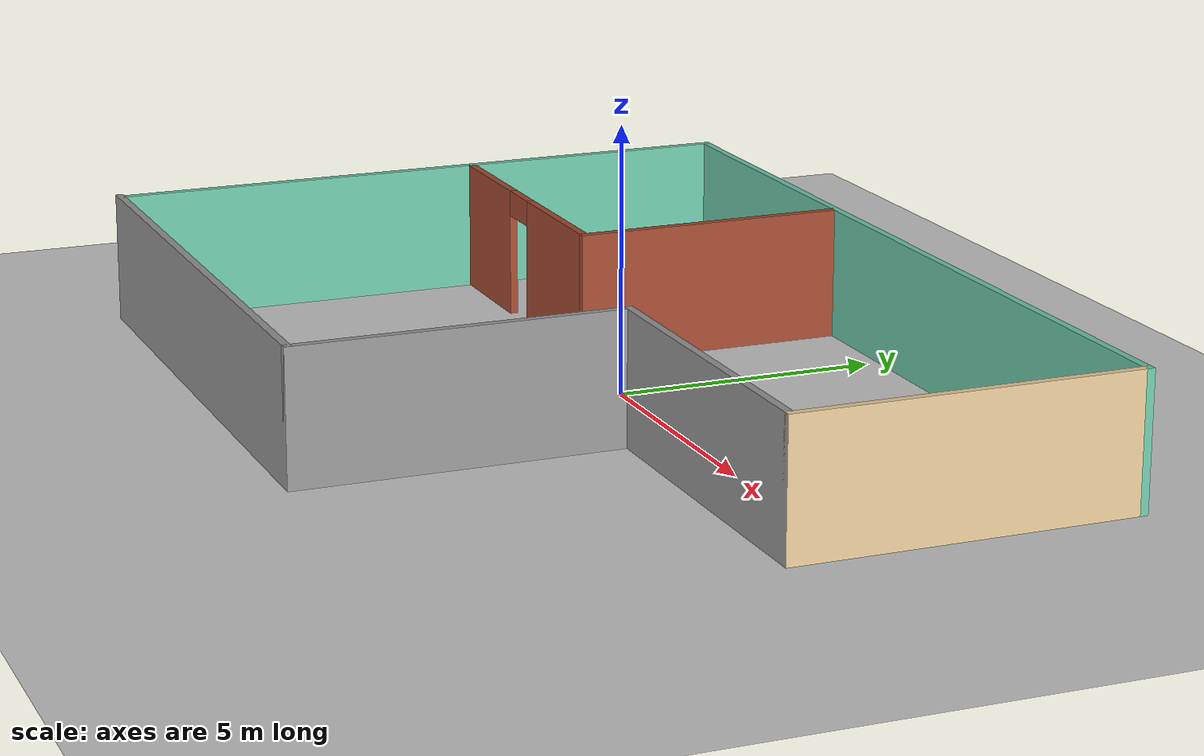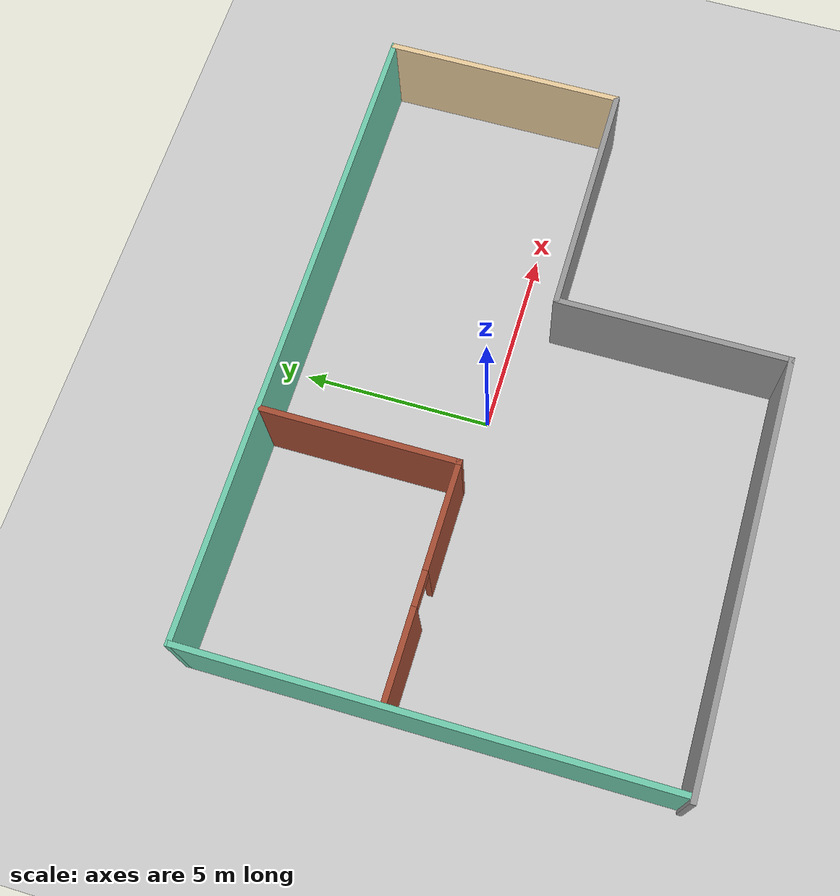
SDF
<sdf version="1.6">
 <world name="default">
  <light name="sun" type="directional">
   <pose>0 0 10 0 -0 0</pose>
   <diffuse>0.8 0.8 0.8 1</diffuse>
   <specular>0.2 0.2 0.2 1</specular>
   <attenuation>
    <range>1000</range>
    <constant>0.9</constant>
    <linear>0.01</linear>
    <quadratic>0.001</quadratic>
   </attenuation>
   <direction>-0.5 0.1 -0.9</direction>
  </light>
  <model name="ground_plane">
   <static>1</static>
   <link name="link">
    <collision name="collision">
     <geometry><plane><normal>0 0 1</normal><size>100 100</size></plane></geometry>
     <surface><friction><ode><mu>100</mu><mu2>50</mu2></ode></friction></surface>
    </collision>
    <visual name="visual">
     <cast_shadows>0</cast_shadows>
     <geometry><plane><normal>0 0 1</normal><size>100 100</size></plane></geometry>
     <material>
      <script><uri>file://media/materials/scripts/gazebo.material</uri><name>Gazebo/Grey</name></script>
     </material>
    </visual>
   </link>
  </model>
  <gravity>0 0 -9.8</gravity>
  <magnetic_field>6e-06 2.3e-05 -4.2e-05</magnetic_field>
  <atmosphere type="adiabatic"/>
  <physics name="default_physics" default="0" type="ode">
   <max_step_size>0.001</max_step_size>
   <real_time_factor>1</real_time_factor>
   <real_time_update_rate>1000</real_time_update_rate>
  </physics>
  <scene><ambient>0.4 0.4 0.4 1</ambient><background>0.7 0.7 0.7 1</background><shadows>1</shadows></scene>
  <spherical_coordinates>
   <surface_model>EARTH_WGS84</surface_model>
   <latitude_deg>0</latitude_deg>
   <longitude_deg>0</longitude_deg>
   <elevation>0</elevation>
   <heading_deg>0</heading_deg>
  </spherical_coordinates>
  <model name="Green_cafe_2">
   <pose>0.473629 -0.905298 0 0 -0 0</pose>
   <link name="Wall_29">
    <collision name="Wall_29_Collision">
     <geometry><box><size>11.25 0.15 2.5</size></box></geometry>
     <pose>0 0 1.25 0 -0 0</pose>
    </collision>
    <visual name="Wall_29_Visual">
     <pose>0 0 1.25 0 -0 0</pose>
     <geometry><box><size>11.25 0.15 2.5</size></box></geometry>
     <material>
      <script><uri>file://media/materials/scripts/gazebo.material</uri><name>Gazebo/Grey</name></script>
      <ambient>1 1 1 1</ambient>
     </material>
     <meta><layer>0</layer></meta>
    </visual>
    <pose>-3.175 -6.225 0 0 -0 0</pose>
   </link>
   <link name="Wall_30">
    <collision name="Wall_30_Collision">
     <geometry><box><size>6.25 0.15 2.5</size></box></geometry>
     <pose>0 0 1.25 0 -0 0</pose>
    </collision>
    <visual name="Wall_30_Visual">
     <pose>0 0 1.25 0 -0 0</pose>
     <geometry><box><size>6.25 0.15 2.5</size></box></geometry>
     <material>
      <script><uri>file://media/materials/scripts/gazebo.material</uri><name>Gazebo/Grey</name></script>
      <ambient>1 1 1 1</ambient>
     </material>
     <meta><layer>0</layer></meta>
    </visual>
    <pose>2.375 -3.175 0 0 -0 1.5708</pose>
   </link>
   <link name="Wall_31">
    <collision name="Wall_31_Collision">
     <geometry><box><size>6.5 0.15 2.5</size></box></geometry>
     <pose>0 0 1.25 0 -0 0</pose>
    </collision>
    <visual name="Wall_31_Visual">
     <pose>0 0 1.25 0 -0 0</pose>
     <geometry><box><size>6.5 0.15 2.5</size></box></geometry>
     <material>
      <script><uri>file://media/materials/scripts/gazebo.material</uri><name>Gazebo/Grey</name></script>
      <ambient>1 1 1 1</ambient>
     </material>
     <meta><layer>0</layer></meta>
    </visual>
    <pose>5.55 -0.125 0 0 -0 0</pose>
   </link>
   <link name="Wall_33">
    <collision name="Wall_33_Collision">
     <geometry><box><size>6.5 0.15 2.5</size></box></geometry>
     <pose>0 0 1.25 0 -0 0</pose>
    </collision>
    <visual name="Wall_33_Visual">
     <pose>0 0 1.25 0 -0 0</pose>
     <geometry><box><size>6.5 0.15 2.5</size></box></geometry>
     <material>
      <script><uri>file://media/materials/scripts/gazebo.material</uri><name>Gazebo/Grey</name></script>
      <ambient>0.921569 0.807843 0.615686 1</ambient>
     </material>
     <meta><layer>0</layer></meta>
    </visual>
    <pose>8.725 3.05 0 0 -0 1.5708</pose>
   </link>
   <link name="Wall_34">
    <collision name="Wall_34_Collision">
     <geometry><box><size>17.5 0.15 2.5</size></box></geometry>
     <pose>0 0 1.25 0 -0 0</pose>
    </collision>
    <visual name="Wall_34_Visual">
     <pose>0 0 1.25 0 -0 0</pose>
     <geometry><box><size>17.5 0.15 2.5</size></box></geometry>
     <material>
      <script><uri>file://media/materials/scripts/gazebo.material</uri><name>Gazebo/Grey</name></script>
      <ambient>0.435294 0.796078 0.67451 1</ambient>
     </material>
     <meta><layer>0</layer></meta>
    </visual>
    <pose>0.05 6.225 0 0 -0 3.14159</pose>
   </link>
   <link name="Wall_35">
    <collision name="Wall_35_Collision">
     <geometry><box><size>12.5 0.15 2.5</size></box></geometry>
     <pose>0 0 1.25 0 -0 0</pose>
    </collision>
    <visual name="Wall_35_Visual">
     <pose>0 0 1.25 0 -0 0</pose>
     <geometry><box><size>12.5 0.15 2.5</size></box></geometry>
     <material>
      <script><uri>file://media/materials/scripts/gazebo.material</uri><name>Gazebo/Grey</name></script>
      <ambient>0.435294 0.796078 0.67451 1</ambient>
     </material>
     <meta><layer>0</layer></meta>
    </visual>
    <pose>-8.625 0.05 0 0 0 -1.5708</pose>
   </link>
   <link name="Wall_44">
    <pose>-5.56527 1.02012 0 0 -0 0</pose>
    <visual name="Wall_44_Visual_0">
     <pose>-1.89655 0 1.25 0 -0 0</pose>
     <geometry><box><size>2.45689 0.15 2.5</size></box></geometry>
     <material>
      <script><uri>file://media/materials/scripts/gazebo.material</uri><name>Gazebo/Bricks</name></script>
      <ambient>1 1 1 1</ambient>
     </material>
     <meta><layer>0</layer></meta>
    </visual>
    <collision name="Wall_44_Collision_0">
     <geometry><box><size>2.45689 0.15 2.5</size></box></geometry>
     <pose>-1.89655 0 1.25 0 -0 0</pose>
    </collision>
    <visual name="Wall_44_Visual_1">
     <pose>1.67844 0 1.25 0 -0 0</pose>
     <geometry><box><size>2.89311 0.15 2.5</size></box></geometry>
     <material>
      <script><uri>file://media/materials/scripts/gazebo.material</uri><name>Gazebo/Bricks</name></script>
      <ambient>1 1 1 1</ambient>
     </material>
     <meta><layer>0</layer></meta>
    </visual>
    <collision name="Wall_44_Collision_1">
     <geometry><box><size>2.89311 0.15 2.5</size></box></geometry>
     <pose>1.67844 0 1.25 0 -0 0</pose>
    </collision>
    <visual name="Wall_44_Visual_2">
     <pose>-0.21811 0 2.25 0 -0 0</pose>
     <geometry><box><size>0.9 0.15 0.5</size></box></geometry>
     <material>
      <script><uri>file://media/materials/scripts/gazebo.material</uri><name>Gazebo/Bricks</name></script>
      <ambient>1 1 1 1</ambient>
     </material>
     <meta><layer>0</layer></meta>
    </visual>
    <collision name="Wall_44_Collision_2">
     <geometry><box><size>0.9 0.15 0.5</size></box></geometry>
     <pose>-0.21811 0 2.25 0 -0 0</pose>
    </collision>
   </link>
   <link name="Wall_45">
    <collision name="Wall_45_Collision">
     <geometry><box><size>5.25 0.15 2.5</size></box></geometry>
     <pose>0 0 1.25 0 -0 0</pose>
    </collision>
    <visual name="Wall_45_Visual">
     <pose>0 0 1.25 0 -0 0</pose>
     <geometry><box><size>5.25 0.15 2.5</size></box></geometry>
     <material>
      <script><uri>file://media/materials/scripts/gazebo.material</uri><name>Gazebo/Bricks</name></script>
      <ambient>1 1 1 1</ambient>
     </material>
     <meta><layer>0</layer></meta>
    </visual>
    <pose>-2.51527 3.57011 0 0 -0 1.5708</pose>
   </link>
   <static>1</static>
  </model>
 </world>
</sdf>
